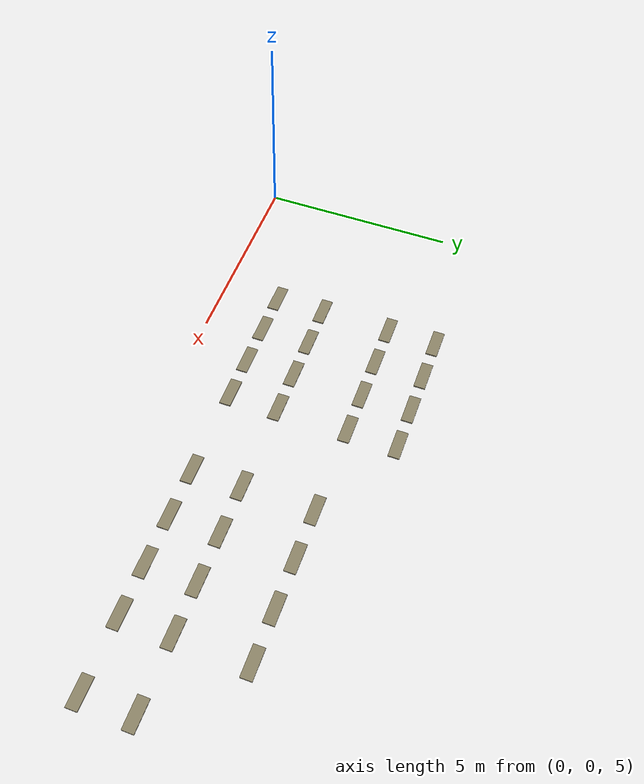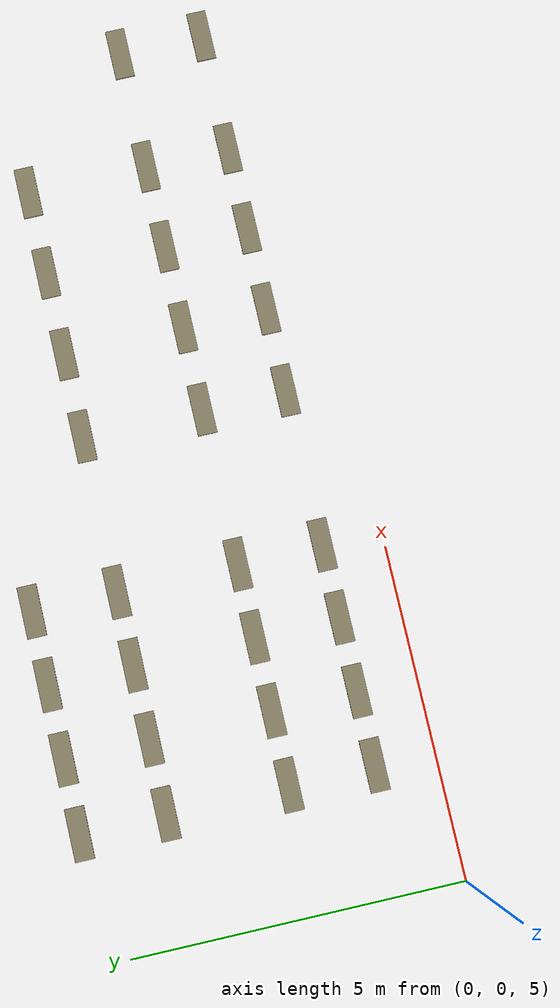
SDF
<sdf version="1.10">
 <model name="room_fluorescent_lights">
  <static>true</static>
  <link name="ceiling_lights_zone1_r1_c1">
   <pose>1.8 0.75 2.8 0 0 0</pose>
   <collision name="ceiling_lights_zone1_r1_c1_collision">
    <geometry><box><size>0.85 0.32 0.04</size></box></geometry>
   </collision>
   <visual name="ceiling_lights_zone1_r1_c1_visual">
    <pose>0 0 -0.02 0 0 0</pose>
    <geometry><box><size>0.85 0.32 0.04</size></box></geometry>
    <material>
     <ambient>0.38 0.36 0.29 1</ambient>
     <diffuse>0.52 0.49 0.38 1</diffuse>
     <emissive>0.30 0.27 0.19 1</emissive>
     <specular>0.06 0.06 0.05 1</specular>
    </material>
   </visual>
   <light name="ceiling_lights_zone1_r1_c1_spot" type="spot">
    <pose>0 0 -0.035 0 0 0</pose>
    <diffuse>0.32 0.305 0.265 1</diffuse>
    <specular>0.08 0.08 0.065 1</specular>
    <attenuation>
     <range>9.2</range>
     <constant>1.05</constant>
     <linear>0.23</linear>
     <quadratic>0.035</quadratic>
    </attenuation>
    <direction>0 0 -1</direction>
    <spot><inner_angle>1.45</inner_angle><outer_angle>2.45</outer_angle><falloff>0.5</falloff></spot>
    <cast_shadows>false</cast_shadows>
   </light>
  </link>
  <link name="ceiling_lights_zone1_r1_c2">
   <pose>1.8 2.15 2.8 0 0 0</pose>
   <collision name="ceiling_lights_zone1_r1_c2_collision">
    <geometry><box><size>0.85 0.32 0.04</size></box></geometry>
   </collision>
   <visual name="ceiling_lights_zone1_r1_c2_visual">
    <pose>0 0 -0.02 0 0 0</pose>
    <geometry><box><size>0.85 0.32 0.04</size></box></geometry>
    <material>
     <ambient>0.38 0.36 0.29 1</ambient>
     <diffuse>0.52 0.49 0.38 1</diffuse>
     <emissive>0.30 0.27 0.19 1</emissive>
     <specular>0.06 0.06 0.05 1</specular>
    </material>
   </visual>
   <light name="ceiling_lights_zone1_r1_c2_spot" type="spot">
    <pose>0 0 -0.035 0 0 0</pose>
    <diffuse>0.32 0.305 0.265 1</diffuse>
    <specular>0.08 0.08 0.065 1</specular>
    <attenuation>
     <range>9.2</range>
     <constant>1.05</constant>
     <linear>0.23</linear>
     <quadratic>0.035</quadratic>
    </attenuation>
    <direction>0 0 -1</direction>
    <spot><inner_angle>1.45</inner_angle><outer_angle>2.45</outer_angle><falloff>0.5</falloff></spot>
    <cast_shadows>false</cast_shadows>
   </light>
  </link>
  <link name="ceiling_lights_zone1_r1_c3">
   <pose>1.8 4.15 2.8 0 0 0</pose>
   <collision name="ceiling_lights_zone1_r1_c3_collision">
    <geometry><box><size>0.85 0.32 0.04</size></box></geometry>
   </collision>
   <visual name="ceiling_lights_zone1_r1_c3_visual">
    <pose>0 0 -0.02 0 0 0</pose>
    <geometry><box><size>0.85 0.32 0.04</size></box></geometry>
    <material>
     <ambient>0.38 0.36 0.29 1</ambient>
     <diffuse>0.52 0.49 0.38 1</diffuse>
     <emissive>0.30 0.27 0.19 1</emissive>
     <specular>0.06 0.06 0.05 1</specular>
    </material>
   </visual>
   <light name="ceiling_lights_zone1_r1_c3_spot" type="spot">
    <pose>0 0 -0.035 0 0 0</pose>
    <diffuse>0.32 0.305 0.265 1</diffuse>
    <specular>0.08 0.08 0.065 1</specular>
    <attenuation>
     <range>9.2</range>
     <constant>1.05</constant>
     <linear>0.23</linear>
     <quadratic>0.035</quadratic>
    </attenuation>
    <direction>0 0 -1</direction>
    <spot><inner_angle>1.45</inner_angle><outer_angle>2.45</outer_angle><falloff>0.5</falloff></spot>
    <cast_shadows>false</cast_shadows>
   </light>
  </link>
  <link name="ceiling_lights_zone1_r1_c4">
   <pose>1.8 5.55 2.8 0 0 0</pose>
   <collision name="ceiling_lights_zone1_r1_c4_collision">
    <geometry><box><size>0.85 0.32 0.04</size></box></geometry>
   </collision>
   <visual name="ceiling_lights_zone1_r1_c4_visual">
    <pose>0 0 -0.02 0 0 0</pose>
    <geometry><box><size>0.85 0.32 0.04</size></box></geometry>
    <material>
     <ambient>0.38 0.36 0.29 1</ambient>
     <diffuse>0.52 0.49 0.38 1</diffuse>
     <emissive>0.30 0.27 0.19 1</emissive>
     <specular>0.06 0.06 0.05 1</specular>
    </material>
   </visual>
   <light name="ceiling_lights_zone1_r1_c4_spot" type="spot">
    <pose>0 0 -0.035 0 0 0</pose>
    <diffuse>0.32 0.305 0.265 1</diffuse>
    <specular>0.08 0.08 0.065 1</specular>
    <attenuation>
     <range>9.2</range>
     <constant>1.05</constant>
     <linear>0.23</linear>
     <quadratic>0.035</quadratic>
    </attenuation>
    <direction>0 0 -1</direction>
    <spot><inner_angle>1.45</inner_angle><outer_angle>2.45</outer_angle><falloff>0.5</falloff></spot>
    <cast_shadows>false</cast_shadows>
   </light>
  </link>
  <link name="ceiling_lights_zone1_r2_c1">
   <pose>3 0.75 2.8 0 0 0</pose>
   <collision name="ceiling_lights_zone1_r2_c1_collision">
    <geometry><box><size>0.85 0.32 0.04</size></box></geometry>
   </collision>
   <visual name="ceiling_lights_zone1_r2_c1_visual">
    <pose>0 0 -0.02 0 0 0</pose>
    <geometry><box><size>0.85 0.32 0.04</size></box></geometry>
    <material>
     <ambient>0.38 0.36 0.29 1</ambient>
     <diffuse>0.52 0.49 0.38 1</diffuse>
     <emissive>0.30 0.27 0.19 1</emissive>
     <specular>0.06 0.06 0.05 1</specular>
    </material>
   </visual>
   <light name="ceiling_lights_zone1_r2_c1_spot" type="spot">
    <pose>0 0 -0.035 0 0 0</pose>
    <diffuse>0.32 0.305 0.265 1</diffuse>
    <specular>0.08 0.08 0.065 1</specular>
    <attenuation>
     <range>9.2</range>
     <constant>1.05</constant>
     <linear>0.23</linear>
     <quadratic>0.035</quadratic>
    </attenuation>
    <direction>0 0 -1</direction>
    <spot><inner_angle>1.45</inner_angle><outer_angle>2.45</outer_angle><falloff>0.5</falloff></spot>
    <cast_shadows>false</cast_shadows>
   </light>
  </link>
  <link name="ceiling_lights_zone1_r2_c2">
   <pose>3 2.15 2.8 0 0 0</pose>
   <collision name="ceiling_lights_zone1_r2_c2_collision">
    <geometry><box><size>0.85 0.32 0.04</size></box></geometry>
   </collision>
   <visual name="ceiling_lights_zone1_r2_c2_visual">
    <pose>0 0 -0.02 0 0 0</pose>
    <geometry><box><size>0.85 0.32 0.04</size></box></geometry>
    <material>
     <ambient>0.38 0.36 0.29 1</ambient>
     <diffuse>0.52 0.49 0.38 1</diffuse>
     <emissive>0.30 0.27 0.19 1</emissive>
     <specular>0.06 0.06 0.05 1</specular>
    </material>
   </visual>
   <light name="ceiling_lights_zone1_r2_c2_spot" type="spot">
    <pose>0 0 -0.035 0 0 0</pose>
    <diffuse>0.32 0.305 0.265 1</diffuse>
    <specular>0.08 0.08 0.065 1</specular>
    <attenuation>
     <range>9.2</range>
     <constant>1.05</constant>
     <linear>0.23</linear>
     <quadratic>0.035</quadratic>
    </attenuation>
    <direction>0 0 -1</direction>
    <spot><inner_angle>1.45</inner_angle><outer_angle>2.45</outer_angle><falloff>0.5</falloff></spot>
    <cast_shadows>false</cast_shadows>
   </light>
  </link>
  <link name="ceiling_lights_zone1_r2_c3">
   <pose>3 4.15 2.8 0 0 0</pose>
   <collision name="ceiling_lights_zone1_r2_c3_collision">
    <geometry><box><size>0.85 0.32 0.04</size></box></geometry>
   </collision>
   <visual name="ceiling_lights_zone1_r2_c3_visual">
    <pose>0 0 -0.02 0 0 0</pose>
    <geometry><box><size>0.85 0.32 0.04</size></box></geometry>
    <material>
     <ambient>0.38 0.36 0.29 1</ambient>
     <diffuse>0.52 0.49 0.38 1</diffuse>
     <emissive>0.30 0.27 0.19 1</emissive>
     <specular>0.06 0.06 0.05 1</specular>
    </material>
   </visual>
   <light name="ceiling_lights_zone1_r2_c3_spot" type="spot">
    <pose>0 0 -0.035 0 0 0</pose>
    <diffuse>0.32 0.305 0.265 1</diffuse>
    <specular>0.08 0.08 0.065 1</specular>
    <attenuation>
     <range>9.2</range>
     <constant>1.05</constant>
     <linear>0.23</linear>
     <quadratic>0.035</quadratic>
    </attenuation>
    <direction>0 0 -1</direction>
    <spot><inner_angle>1.45</inner_angle><outer_angle>2.45</outer_angle><falloff>0.5</falloff></spot>
    <cast_shadows>false</cast_shadows>
   </light>
  </link>
  <link name="ceiling_lights_zone1_r2_c4">
   <pose>3 5.55 2.8 0 0 0</pose>
   <collision name="ceiling_lights_zone1_r2_c4_collision">
    <geometry><box><size>0.85 0.32 0.04</size></box></geometry>
   </collision>
   <visual name="ceiling_lights_zone1_r2_c4_visual">
    <pose>0 0 -0.02 0 0 0</pose>
    <geometry><box><size>0.85 0.32 0.04</size></box></geometry>
    <material>
     <ambient>0.38 0.36 0.29 1</ambient>
     <diffuse>0.52 0.49 0.38 1</diffuse>
     <emissive>0.30 0.27 0.19 1</emissive>
     <specular>0.06 0.06 0.05 1</specular>
    </material>
   </visual>
   <light name="ceiling_lights_zone1_r2_c4_spot" type="spot">
    <pose>0 0 -0.035 0 0 0</pose>
    <diffuse>0.32 0.305 0.265 1</diffuse>
    <specular>0.08 0.08 0.065 1</specular>
    <attenuation>
     <range>9.2</range>
     <constant>1.05</constant>
     <linear>0.23</linear>
     <quadratic>0.035</quadratic>
    </attenuation>
    <direction>0 0 -1</direction>
    <spot><inner_angle>1.45</inner_angle><outer_angle>2.45</outer_angle><falloff>0.5</falloff></spot>
    <cast_shadows>false</cast_shadows>
   </light>
  </link>
  <link name="ceiling_lights_zone1_r3_c1">
   <pose>4.2 0.75 2.8 0 0 0</pose>
   <collision name="ceiling_lights_zone1_r3_c1_collision">
    <geometry><box><size>0.85 0.32 0.04</size></box></geometry>
   </collision>
   <visual name="ceiling_lights_zone1_r3_c1_visual">
    <pose>0 0 -0.02 0 0 0</pose>
    <geometry><box><size>0.85 0.32 0.04</size></box></geometry>
    <material>
     <ambient>0.38 0.36 0.29 1</ambient>
     <diffuse>0.52 0.49 0.38 1</diffuse>
     <emissive>0.30 0.27 0.19 1</emissive>
     <specular>0.06 0.06 0.05 1</specular>
    </material>
   </visual>
   <light name="ceiling_lights_zone1_r3_c1_spot" type="spot">
    <pose>0 0 -0.035 0 0 0</pose>
    <diffuse>0.32 0.305 0.265 1</diffuse>
    <specular>0.08 0.08 0.065 1</specular>
    <attenuation>
     <range>9.2</range>
     <constant>1.05</constant>
     <linear>0.23</linear>
     <quadratic>0.035</quadratic>
    </attenuation>
    <direction>0 0 -1</direction>
    <spot><inner_angle>1.45</inner_angle><outer_angle>2.45</outer_angle><falloff>0.5</falloff></spot>
    <cast_shadows>false</cast_shadows>
   </light>
  </link>
  <link name="ceiling_lights_zone1_r3_c2">
   <pose>4.2 2.15 2.8 0 0 0</pose>
   <collision name="ceiling_lights_zone1_r3_c2_collision">
    <geometry><box><size>0.85 0.32 0.04</size></box></geometry>
   </collision>
   <visual name="ceiling_lights_zone1_r3_c2_visual">
    <pose>0 0 -0.02 0 0 0</pose>
    <geometry><box><size>0.85 0.32 0.04</size></box></geometry>
    <material>
     <ambient>0.38 0.36 0.29 1</ambient>
     <diffuse>0.52 0.49 0.38 1</diffuse>
     <emissive>0.30 0.27 0.19 1</emissive>
     <specular>0.06 0.06 0.05 1</specular>
    </material>
   </visual>
   <light name="ceiling_lights_zone1_r3_c2_spot" type="spot">
    <pose>0 0 -0.035 0 0 0</pose>
    <diffuse>0.32 0.305 0.265 1</diffuse>
    <specular>0.08 0.08 0.065 1</specular>
    <attenuation>
     <range>9.2</range>
     <constant>1.05</constant>
     <linear>0.23</linear>
     <quadratic>0.035</quadratic>
    </attenuation>
    <direction>0 0 -1</direction>
    <spot><inner_angle>1.45</inner_angle><outer_angle>2.45</outer_angle><falloff>0.5</falloff></spot>
    <cast_shadows>false</cast_shadows>
   </light>
  </link>
  <link name="ceiling_lights_zone1_r3_c3">
   <pose>4.2 4.15 2.8 0 0 0</pose>
   <collision name="ceiling_lights_zone1_r3_c3_collision">
    <geometry><box><size>0.85 0.32 0.04</size></box></geometry>
   </collision>
   <visual name="ceiling_lights_zone1_r3_c3_visual">
    <pose>0 0 -0.02 0 0 0</pose>
    <geometry><box><size>0.85 0.32 0.04</size></box></geometry>
    <material>
     <ambient>0.38 0.36 0.29 1</ambient>
     <diffuse>0.52 0.49 0.38 1</diffuse>
     <emissive>0.30 0.27 0.19 1</emissive>
     <specular>0.06 0.06 0.05 1</specular>
    </material>
   </visual>
   <light name="ceiling_lights_zone1_r3_c3_spot" type="spot">
    <pose>0 0 -0.035 0 0 0</pose>
    <diffuse>0.32 0.305 0.265 1</diffuse>
    <specular>0.08 0.08 0.065 1</specular>
    <attenuation>
     <range>9.2</range>
     <constant>1.05</constant>
     <linear>0.23</linear>
     <quadratic>0.035</quadratic>
    </attenuation>
    <direction>0 0 -1</direction>
    <spot><inner_angle>1.45</inner_angle><outer_angle>2.45</outer_angle><falloff>0.5</falloff></spot>
    <cast_shadows>false</cast_shadows>
   </light>
  </link>
  <link name="ceiling_lights_zone1_r3_c4">
   <pose>4.2 5.55 2.8 0 0 0</pose>
   <collision name="ceiling_lights_zone1_r3_c4_collision">
    <geometry><box><size>0.85 0.32 0.04</size></box></geometry>
   </collision>
   <visual name="ceiling_lights_zone1_r3_c4_visual">
    <pose>0 0 -0.02 0 0 0</pose>
    <geometry><box><size>0.85 0.32 0.04</size></box></geometry>
    <material>
     <ambient>0.38 0.36 0.29 1</ambient>
     <diffuse>0.52 0.49 0.38 1</diffuse>
     <emissive>0.30 0.27 0.19 1</emissive>
     <specular>0.06 0.06 0.05 1</specular>
    </material>
   </visual>
   <light name="ceiling_lights_zone1_r3_c4_spot" type="spot">
    <pose>0 0 -0.035 0 0 0</pose>
    <diffuse>0.32 0.305 0.265 1</diffuse>
    <specular>0.08 0.08 0.065 1</specular>
    <attenuation>
     <range>9.2</range>
     <constant>1.05</constant>
     <linear>0.23</linear>
     <quadratic>0.035</quadratic>
    </attenuation>
    <direction>0 0 -1</direction>
    <spot><inner_angle>1.45</inner_angle><outer_angle>2.45</outer_angle><falloff>0.5</falloff></spot>
    <cast_shadows>false</cast_shadows>
   </light>
  </link>
  <link name="ceiling_lights_zone1_r4_c1">
   <pose>5.4 0.75 2.8 0 0 0</pose>
   <collision name="ceiling_lights_zone1_r4_c1_collision">
    <geometry><box><size>0.85 0.32 0.04</size></box></geometry>
   </collision>
   <visual name="ceiling_lights_zone1_r4_c1_visual">
    <pose>0 0 -0.02 0 0 0</pose>
    <geometry><box><size>0.85 0.32 0.04</size></box></geometry>
    <material>
     <ambient>0.38 0.36 0.29 1</ambient>
     <diffuse>0.52 0.49 0.38 1</diffuse>
     <emissive>0.30 0.27 0.19 1</emissive>
     <specular>0.06 0.06 0.05 1</specular>
    </material>
   </visual>
   <light name="ceiling_lights_zone1_r4_c1_spot" type="spot">
    <pose>0 0 -0.035 0 0 0</pose>
    <diffuse>0.32 0.305 0.265 1</diffuse>
    <specular>0.08 0.08 0.065 1</specular>
    <attenuation>
     <range>9.2</range>
     <constant>1.05</constant>
     <linear>0.23</linear>
     <quadratic>0.035</quadratic>
    </attenuation>
    <direction>0 0 -1</direction>
    <spot><inner_angle>1.45</inner_angle><outer_angle>2.45</outer_angle><falloff>0.5</falloff></spot>
    <cast_shadows>false</cast_shadows>
   </light>
  </link>
  <link name="ceiling_lights_zone1_r4_c2">
   <pose>5.4 2.15 2.8 0 0 0</pose>
   <collision name="ceiling_lights_zone1_r4_c2_collision">
    <geometry><box><size>0.85 0.32 0.04</size></box></geometry>
   </collision>
   <visual name="ceiling_lights_zone1_r4_c2_visual">
    <pose>0 0 -0.02 0 0 0</pose>
    <geometry><box><size>0.85 0.32 0.04</size></box></geometry>
    <material>
     <ambient>0.38 0.36 0.29 1</ambient>
     <diffuse>0.52 0.49 0.38 1</diffuse>
     <emissive>0.30 0.27 0.19 1</emissive>
     <specular>0.06 0.06 0.05 1</specular>
    </material>
   </visual>
   <light name="ceiling_lights_zone1_r4_c2_spot" type="spot">
    <pose>0 0 -0.035 0 0 0</pose>
    <diffuse>0.32 0.305 0.265 1</diffuse>
    <specular>0.08 0.08 0.065 1</specular>
    <attenuation>
     <range>9.2</range>
     <constant>1.05</constant>
     <linear>0.23</linear>
     <quadratic>0.035</quadratic>
    </attenuation>
    <direction>0 0 -1</direction>
    <spot><inner_angle>1.45</inner_angle><outer_angle>2.45</outer_angle><falloff>0.5</falloff></spot>
    <cast_shadows>false</cast_shadows>
   </light>
  </link>
  <link name="ceiling_lights_zone1_r4_c3">
   <pose>5.4 4.15 2.8 0 0 0</pose>
   <collision name="ceiling_lights_zone1_r4_c3_collision">
    <geometry><box><size>0.85 0.32 0.04</size></box></geometry>
   </collision>
   <visual name="ceiling_lights_zone1_r4_c3_visual">
    <pose>0 0 -0.02 0 0 0</pose>
    <geometry><box><size>0.85 0.32 0.04</size></box></geometry>
    <material>
     <ambient>0.38 0.36 0.29 1</ambient>
     <diffuse>0.52 0.49 0.38 1</diffuse>
     <emissive>0.30 0.27 0.19 1</emissive>
     <specular>0.06 0.06 0.05 1</specular>
    </material>
   </visual>
   <light name="ceiling_lights_zone1_r4_c3_spot" type="spot">
    <pose>0 0 -0.035 0 0 0</pose>
    <diffuse>0.32 0.305 0.265 1</diffuse>
    <specular>0.08 0.08 0.065 1</specular>
    <attenuation>
     <range>9.2</range>
     <constant>1.05</constant>
     <linear>0.23</linear>
     <quadratic>0.035</quadratic>
    </attenuation>
    <direction>0 0 -1</direction>
    <spot><inner_angle>1.45</inner_angle><outer_angle>2.45</outer_angle><falloff>0.5</falloff></spot>
    <cast_shadows>false</cast_shadows>
   </light>
  </link>
  <link name="ceiling_lights_zone1_r4_c4">
   <pose>5.4 5.55 2.8 0 0 0</pose>
   <collision name="ceiling_lights_zone1_r4_c4_collision">
    <geometry><box><size>0.85 0.32 0.04</size></box></geometry>
   </collision>
   <visual name="ceiling_lights_zone1_r4_c4_visual">
    <pose>0 0 -0.02 0 0 0</pose>
    <geometry><box><size>0.85 0.32 0.04</size></box></geometry>
    <material>
     <ambient>0.38 0.36 0.29 1</ambient>
     <diffuse>0.52 0.49 0.38 1</diffuse>
     <emissive>0.30 0.27 0.19 1</emissive>
     <specular>0.06 0.06 0.05 1</specular>
    </material>
   </visual>
   <light name="ceiling_lights_zone1_r4_c4_spot" type="spot">
    <pose>0 0 -0.035 0 0 0</pose>
    <diffuse>0.32 0.305 0.265 1</diffuse>
    <specular>0.08 0.08 0.065 1</specular>
    <attenuation>
     <range>9.2</range>
     <constant>1.05</constant>
     <linear>0.23</linear>
     <quadratic>0.035</quadratic>
    </attenuation>
    <direction>0 0 -1</direction>
    <spot><inner_angle>1.45</inner_angle><outer_angle>2.45</outer_angle><falloff>0.5</falloff></spot>
    <cast_shadows>false</cast_shadows>
   </light>
  </link>
  <link name="ceiling_lights_zone2_r1_c1">
   <pose>8 0.75 2.8 0 0 0</pose>
   <collision name="ceiling_lights_zone2_r1_c1_collision">
    <geometry><box><size>0.85 0.32 0.04</size></box></geometry>
   </collision>
   <visual name="ceiling_lights_zone2_r1_c1_visual">
    <pose>0 0 -0.02 0 0 0</pose>
    <geometry><box><size>0.85 0.32 0.04</size></box></geometry>
    <material>
     <ambient>0.38 0.36 0.29 1</ambient>
     <diffuse>0.52 0.49 0.38 1</diffuse>
     <emissive>0.30 0.27 0.19 1</emissive>
     <specular>0.06 0.06 0.05 1</specular>
    </material>
   </visual>
   <light name="ceiling_lights_zone2_r1_c1_spot" type="spot">
    <pose>0 0 -0.035 0 0 0</pose>
    <diffuse>0.32 0.305 0.265 1</diffuse>
    <specular>0.08 0.08 0.065 1</specular>
    <attenuation>
     <range>9.2</range>
     <constant>1.05</constant>
     <linear>0.23</linear>
     <quadratic>0.035</quadratic>
    </attenuation>
    <direction>0 0 -1</direction>
    <spot><inner_angle>1.45</inner_angle><outer_angle>2.45</outer_angle><falloff>0.5</falloff></spot>
    <cast_shadows>false</cast_shadows>
   </light>
  </link>
  <link name="ceiling_lights_zone2_r1_c2">
   <pose>8 2.15 2.8 0 0 0</pose>
   <collision name="ceiling_lights_zone2_r1_c2_collision">
    <geometry><box><size>0.85 0.32 0.04</size></box></geometry>
   </collision>
   <visual name="ceiling_lights_zone2_r1_c2_visual">
    <pose>0 0 -0.02 0 0 0</pose>
    <geometry><box><size>0.85 0.32 0.04</size></box></geometry>
    <material>
     <ambient>0.38 0.36 0.29 1</ambient>
     <diffuse>0.52 0.49 0.38 1</diffuse>
     <emissive>0.30 0.27 0.19 1</emissive>
     <specular>0.06 0.06 0.05 1</specular>
    </material>
   </visual>
   <light name="ceiling_lights_zone2_r1_c2_spot" type="spot">
    <pose>0 0 -0.035 0 0 0</pose>
    <diffuse>0.32 0.305 0.265 1</diffuse>
    <specular>0.08 0.08 0.065 1</specular>
    <attenuation>
     <range>9.2</range>
     <constant>1.05</constant>
     <linear>0.23</linear>
     <quadratic>0.035</quadratic>
    </attenuation>
    <direction>0 0 -1</direction>
    <spot><inner_angle>1.45</inner_angle><outer_angle>2.45</outer_angle><falloff>0.5</falloff></spot>
    <cast_shadows>false</cast_shadows>
   </light>
  </link>
  <link name="ceiling_lights_zone2_r1_c3">
   <pose>8 4.15 2.8 0 0 0</pose>
   <collision name="ceiling_lights_zone2_r1_c3_collision">
    <geometry><box><size>0.85 0.32 0.04</size></box></geometry>
   </collision>
   <visual name="ceiling_lights_zone2_r1_c3_visual">
    <pose>0 0 -0.02 0 0 0</pose>
    <geometry><box><size>0.85 0.32 0.04</size></box></geometry>
    <material>
     <ambient>0.38 0.36 0.29 1</ambient>
     <diffuse>0.52 0.49 0.38 1</diffuse>
     <emissive>0.30 0.27 0.19 1</emissive>
     <specular>0.06 0.06 0.05 1</specular>
    </material>
   </visual>
   <light name="ceiling_lights_zone2_r1_c3_spot" type="spot">
    <pose>0 0 -0.035 0 0 0</pose>
    <diffuse>0.32 0.305 0.265 1</diffuse>
    <specular>0.08 0.08 0.065 1</specular>
    <attenuation>
     <range>9.2</range>
     <constant>1.05</constant>
     <linear>0.23</linear>
     <quadratic>0.035</quadratic>
    </attenuation>
    <direction>0 0 -1</direction>
    <spot><inner_angle>1.45</inner_angle><outer_angle>2.45</outer_angle><falloff>0.5</falloff></spot>
    <cast_shadows>false</cast_shadows>
   </light>
  </link>
  <link name="ceiling_lights_zone2_r2_c1">
   <pose>9.4 0.75 2.8 0 0 0</pose>
   <collision name="ceiling_lights_zone2_r2_c1_collision">
    <geometry><box><size>0.85 0.32 0.04</size></box></geometry>
   </collision>
   <visual name="ceiling_lights_zone2_r2_c1_visual">
    <pose>0 0 -0.02 0 0 0</pose>
    <geometry><box><size>0.85 0.32 0.04</size></box></geometry>
    <material>
     <ambient>0.38 0.36 0.29 1</ambient>
     <diffuse>0.52 0.49 0.38 1</diffuse>
     <emissive>0.30 0.27 0.19 1</emissive>
     <specular>0.06 0.06 0.05 1</specular>
    </material>
   </visual>
   <light name="ceiling_lights_zone2_r2_c1_spot" type="spot">
    <pose>0 0 -0.035 0 0 0</pose>
    <diffuse>0.32 0.305 0.265 1</diffuse>
    <specular>0.08 0.08 0.065 1</specular>
    <attenuation>
     <range>9.2</range>
     <constant>1.05</constant>
     <linear>0.23</linear>
     <quadratic>0.035</quadratic>
    </attenuation>
    <direction>0 0 -1</direction>
    <spot><inner_angle>1.45</inner_angle><outer_angle>2.45</outer_angle><falloff>0.5</falloff></spot>
    <cast_shadows>false</cast_shadows>
   </light>
  </link>
  <link name="ceiling_lights_zone2_r2_c2">
   <pose>9.4 2.15 2.8 0 0 0</pose>
   <collision name="ceiling_lights_zone2_r2_c2_collision">
    <geometry><box><size>0.85 0.32 0.04</size></box></geometry>
   </collision>
   <visual name="ceiling_lights_zone2_r2_c2_visual">
    <pose>0 0 -0.02 0 0 0</pose>
    <geometry><box><size>0.85 0.32 0.04</size></box></geometry>
    <material>
     <ambient>0.38 0.36 0.29 1</ambient>
     <diffuse>0.52 0.49 0.38 1</diffuse>
     <emissive>0.30 0.27 0.19 1</emissive>
     <specular>0.06 0.06 0.05 1</specular>
    </material>
   </visual>
   <light name="ceiling_lights_zone2_r2_c2_spot" type="spot">
    <pose>0 0 -0.035 0 0 0</pose>
    <diffuse>0.32 0.305 0.265 1</diffuse>
    <specular>0.08 0.08 0.065 1</specular>
    <attenuation>
     <range>9.2</range>
     <constant>1.05</constant>
     <linear>0.23</linear>
     <quadratic>0.035</quadratic>
    </attenuation>
    <direction>0 0 -1</direction>
    <spot><inner_angle>1.45</inner_angle><outer_angle>2.45</outer_angle><falloff>0.5</falloff></spot>
    <cast_shadows>false</cast_shadows>
   </light>
  </link>
  <link name="ceiling_lights_zone2_r2_c3">
   <pose>9.4 4.15 2.8 0 0 0</pose>
   <collision name="ceiling_lights_zone2_r2_c3_collision">
    <geometry><box><size>0.85 0.32 0.04</size></box></geometry>
   </collision>
   <visual name="ceiling_lights_zone2_r2_c3_visual">
    <pose>0 0 -0.02 0 0 0</pose>
    <geometry><box><size>0.85 0.32 0.04</size></box></geometry>
    <material>
     <ambient>0.38 0.36 0.29 1</ambient>
     <diffuse>0.52 0.49 0.38 1</diffuse>
     <emissive>0.30 0.27 0.19 1</emissive>
     <specular>0.06 0.06 0.05 1</specular>
    </material>
   </visual>
   <light name="ceiling_lights_zone2_r2_c3_spot" type="spot">
    <pose>0 0 -0.035 0 0 0</pose>
    <diffuse>0.32 0.305 0.265 1</diffuse>
    <specular>0.08 0.08 0.065 1</specular>
    <attenuation>
     <range>9.2</range>
     <constant>1.05</constant>
     <linear>0.23</linear>
     <quadratic>0.035</quadratic>
    </attenuation>
    <direction>0 0 -1</direction>
    <spot><inner_angle>1.45</inner_angle><outer_angle>2.45</outer_angle><falloff>0.5</falloff></spot>
    <cast_shadows>false</cast_shadows>
   </light>
  </link>
  <link name="ceiling_lights_zone2_r3_c1">
   <pose>10.8 0.75 2.8 0 0 0</pose>
   <collision name="ceiling_lights_zone2_r3_c1_collision">
    <geometry><box><size>0.85 0.32 0.04</size></box></geometry>
   </collision>
   <visual name="ceiling_lights_zone2_r3_c1_visual">
    <pose>0 0 -0.02 0 0 0</pose>
    <geometry><box><size>0.85 0.32 0.04</size></box></geometry>
    <material>
     <ambient>0.38 0.36 0.29 1</ambient>
     <diffuse>0.52 0.49 0.38 1</diffuse>
     <emissive>0.30 0.27 0.19 1</emissive>
     <specular>0.06 0.06 0.05 1</specular>
    </material>
   </visual>
   <light name="ceiling_lights_zone2_r3_c1_spot" type="spot">
    <pose>0 0 -0.035 0 0 0</pose>
    <diffuse>0.32 0.305 0.265 1</diffuse>
    <specular>0.08 0.08 0.065 1</specular>
    <attenuation>
     <range>9.2</range>
     <constant>1.05</constant>
     <linear>0.23</linear>
     <quadratic>0.035</quadratic>
    </attenuation>
    <direction>0 0 -1</direction>
    <spot><inner_angle>1.45</inner_angle><outer_angle>2.45</outer_angle><falloff>0.5</falloff></spot>
    <cast_shadows>false</cast_shadows>
   </light>
  </link>
  <link name="ceiling_lights_zone2_r3_c2">
   <pose>10.8 2.15 2.8 0 0 0</pose>
   <collision name="ceiling_lights_zone2_r3_c2_collision">
    <geometry><box><size>0.85 0.32 0.04</size></box></geometry>
   </collision>
   <visual name="ceiling_lights_zone2_r3_c2_visual">
    <pose>0 0 -0.02 0 0 0</pose>
    <geometry><box><size>0.85 0.32 0.04</size></box></geometry>
    <material>
     <ambient>0.38 0.36 0.29 1</ambient>
     <diffuse>0.52 0.49 0.38 1</diffuse>
     <emissive>0.30 0.27 0.19 1</emissive>
     <specular>0.06 0.06 0.05 1</specular>
    </material>
   </visual>
   <light name="ceiling_lights_zone2_r3_c2_spot" type="spot">
    <pose>0 0 -0.035 0 0 0</pose>
    <diffuse>0.32 0.305 0.265 1</diffuse>
    <specular>0.08 0.08 0.065 1</specular>
    <attenuation>
     <range>9.2</range>
     <constant>1.05</constant>
     <linear>0.23</linear>
     <quadratic>0.035</quadratic>
    </attenuation>
    <direction>0 0 -1</direction>
    <spot><inner_angle>1.45</inner_angle><outer_angle>2.45</outer_angle><falloff>0.5</falloff></spot>
    <cast_shadows>false</cast_shadows>
   </light>
  </link>
  <link name="ceiling_lights_zone2_r3_c3">
   <pose>10.8 4.15 2.8 0 0 0</pose>
   <collision name="ceiling_lights_zone2_r3_c3_collision">
    <geometry><box><size>0.85 0.32 0.04</size></box></geometry>
   </collision>
   <visual name="ceiling_lights_zone2_r3_c3_visual">
    <pose>0 0 -0.02 0 0 0</pose>
    <geometry><box><size>0.85 0.32 0.04</size></box></geometry>
    <material>
     <ambient>0.38 0.36 0.29 1</ambient>
     <diffuse>0.52 0.49 0.38 1</diffuse>
     <emissive>0.30 0.27 0.19 1</emissive>
     <specular>0.06 0.06 0.05 1</specular>
    </material>
   </visual>
   <light name="ceiling_lights_zone2_r3_c3_spot" type="spot">
    <pose>0 0 -0.035 0 0 0</pose>
    <diffuse>0.32 0.305 0.265 1</diffuse>
    <specular>0.08 0.08 0.065 1</specular>
    <attenuation>
     <range>9.2</range>
     <constant>1.05</constant>
     <linear>0.23</linear>
     <quadratic>0.035</quadratic>
    </attenuation>
    <direction>0 0 -1</direction>
    <spot><inner_angle>1.45</inner_angle><outer_angle>2.45</outer_angle><falloff>0.5</falloff></spot>
    <cast_shadows>false</cast_shadows>
   </light>
  </link>
  <link name="ceiling_lights_zone2_r4_c1">
   <pose>12.2 0.75 2.8 0 0 0</pose>
   <collision name="ceiling_lights_zone2_r4_c1_collision">
    <geometry><box><size>0.85 0.32 0.04</size></box></geometry>
   </collision>
   <visual name="ceiling_lights_zone2_r4_c1_visual">
    <pose>0 0 -0.02 0 0 0</pose>
    <geometry><box><size>0.85 0.32 0.04</size></box></geometry>
    <material>
     <ambient>0.38 0.36 0.29 1</ambient>
     <diffuse>0.52 0.49 0.38 1</diffuse>
     <emissive>0.30 0.27 0.19 1</emissive>
     <specular>0.06 0.06 0.05 1</specular>
    </material>
   </visual>
   <light name="ceiling_lights_zone2_r4_c1_spot" type="spot">
    <pose>0 0 -0.035 0 0 0</pose>
    <diffuse>0.32 0.305 0.265 1</diffuse>
    <specular>0.08 0.08 0.065 1</specular>
    <attenuation>
     <range>9.2</range>
     <constant>1.05</constant>
     <linear>0.23</linear>
     <quadratic>0.035</quadratic>
    </attenuation>
    <direction>0 0 -1</direction>
    <spot><inner_angle>1.45</inner_angle><outer_angle>2.45</outer_angle><falloff>0.5</falloff></spot>
    <cast_shadows>false</cast_shadows>
   </light>
  </link>
  <link name="ceiling_lights_zone2_r4_c2">
   <pose>12.2 2.15 2.8 0 0 0</pose>
   <collision name="ceiling_lights_zone2_r4_c2_collision">
    <geometry><box><size>0.85 0.32 0.04</size></box></geometry>
   </collision>
   <visual name="ceiling_lights_zone2_r4_c2_visual">
    <pose>0 0 -0.02 0 0 0</pose>
    <geometry><box><size>0.85 0.32 0.04</size></box></geometry>
    <material>
     <ambient>0.38 0.36 0.29 1</ambient>
     <diffuse>0.52 0.49 0.38 1</diffuse>
     <emissive>0.30 0.27 0.19 1</emissive>
     <specular>0.06 0.06 0.05 1</specular>
    </material>
   </visual>
   <light name="ceiling_lights_zone2_r4_c2_spot" type="spot">
    <pose>0 0 -0.035 0 0 0</pose>
    <diffuse>0.32 0.305 0.265 1</diffuse>
    <specular>0.08 0.08 0.065 1</specular>
    <attenuation>
     <range>9.2</range>
     <constant>1.05</constant>
     <linear>0.23</linear>
     <quadratic>0.035</quadratic>
    </attenuation>
    <direction>0 0 -1</direction>
    <spot><inner_angle>1.45</inner_angle><outer_angle>2.45</outer_angle><falloff>0.5</falloff></spot>
    <cast_shadows>false</cast_shadows>
   </light>
  </link>
  <link name="ceiling_lights_zone2_r4_c3">
   <pose>12.2 4.15 2.8 0 0 0</pose>
   <collision name="ceiling_lights_zone2_r4_c3_collision">
    <geometry><box><size>0.85 0.32 0.04</size></box></geometry>
   </collision>
   <visual name="ceiling_lights_zone2_r4_c3_visual">
    <pose>0 0 -0.02 0 0 0</pose>
    <geometry><box><size>0.85 0.32 0.04</size></box></geometry>
    <material>
     <ambient>0.38 0.36 0.29 1</ambient>
     <diffuse>0.52 0.49 0.38 1</diffuse>
     <emissive>0.30 0.27 0.19 1</emissive>
     <specular>0.06 0.06 0.05 1</specular>
    </material>
   </visual>
   <light name="ceiling_lights_zone2_r4_c3_spot" type="spot">
    <pose>0 0 -0.035 0 0 0</pose>
    <diffuse>0.32 0.305 0.265 1</diffuse>
    <specular>0.08 0.08 0.065 1</specular>
    <attenuation>
     <range>9.2</range>
     <constant>1.05</constant>
     <linear>0.23</linear>
     <quadratic>0.035</quadratic>
    </attenuation>
    <direction>0 0 -1</direction>
    <spot><inner_angle>1.45</inner_angle><outer_angle>2.45</outer_angle><falloff>0.5</falloff></spot>
    <cast_shadows>false</cast_shadows>
   </light>
  </link>
  <link name="ceiling_lights_zone3_r1_c1">
   <pose>14.2 0.75 2.8 0 0 0</pose>
   <collision name="ceiling_lights_zone3_r1_c1_collision">
    <geometry><box><size>0.85 0.32 0.04</size></box></geometry>
   </collision>
   <visual name="ceiling_lights_zone3_r1_c1_visual">
    <pose>0 0 -0.02 0 0 0</pose>
    <geometry><box><size>0.85 0.32 0.04</size></box></geometry>
    <material>
     <ambient>0.38 0.36 0.29 1</ambient>
     <diffuse>0.52 0.49 0.38 1</diffuse>
     <emissive>0.30 0.27 0.19 1</emissive>
     <specular>0.06 0.06 0.05 1</specular>
    </material>
   </visual>
   <light name="ceiling_lights_zone3_r1_c1_spot" type="spot">
    <pose>0 0 -0.035 0 0 0</pose>
    <diffuse>0.32 0.305 0.265 1</diffuse>
    <specular>0.08 0.08 0.065 1</specular>
    <attenuation>
     <range>9.2</range>
     <constant>1.05</constant>
     <linear>0.23</linear>
     <quadratic>0.035</quadratic>
    </attenuation>
    <direction>0 0 -1</direction>
    <spot><inner_angle>1.45</inner_angle><outer_angle>2.45</outer_angle><falloff>0.5</falloff></spot>
    <cast_shadows>false</cast_shadows>
   </light>
  </link>
  <link name="ceiling_lights_zone3_r1_c2">
   <pose>14.2 2.15 2.8 0 0 0</pose>
   <collision name="ceiling_lights_zone3_r1_c2_collision">
    <geometry><box><size>0.85 0.32 0.04</size></box></geometry>
   </collision>
   <visual name="ceiling_lights_zone3_r1_c2_visual">
    <pose>0 0 -0.02 0 0 0</pose>
    <geometry><box><size>0.85 0.32 0.04</size></box></geometry>
    <material>
     <ambient>0.38 0.36 0.29 1</ambient>
     <diffuse>0.52 0.49 0.38 1</diffuse>
     <emissive>0.30 0.27 0.19 1</emissive>
     <specular>0.06 0.06 0.05 1</specular>
    </material>
   </visual>
   <light name="ceiling_lights_zone3_r1_c2_spot" type="spot">
    <pose>0 0 -0.035 0 0 0</pose>
    <diffuse>0.32 0.305 0.265 1</diffuse>
    <specular>0.08 0.08 0.065 1</specular>
    <attenuation>
     <range>9.2</range>
     <constant>1.05</constant>
     <linear>0.23</linear>
     <quadratic>0.035</quadratic>
    </attenuation>
    <direction>0 0 -1</direction>
    <spot><inner_angle>1.45</inner_angle><outer_angle>2.45</outer_angle><falloff>0.5</falloff></spot>
    <cast_shadows>false</cast_shadows>
   </light>
  </link>
 </model>
</sdf>
